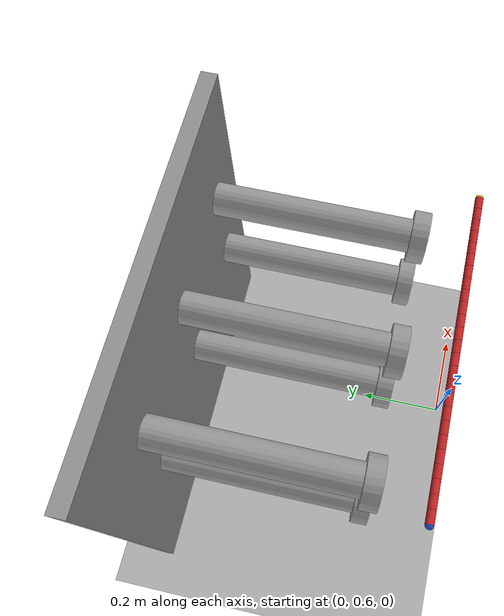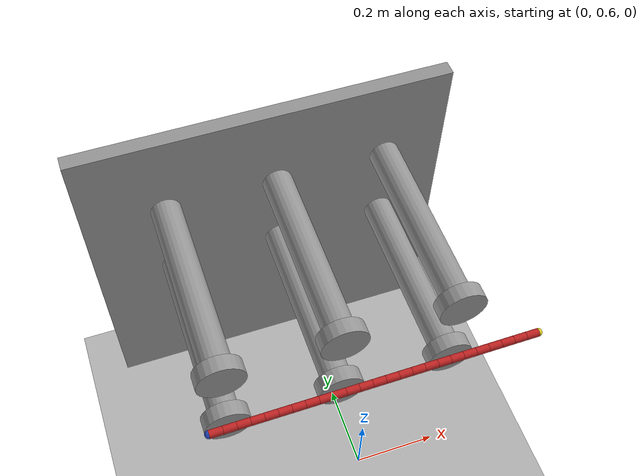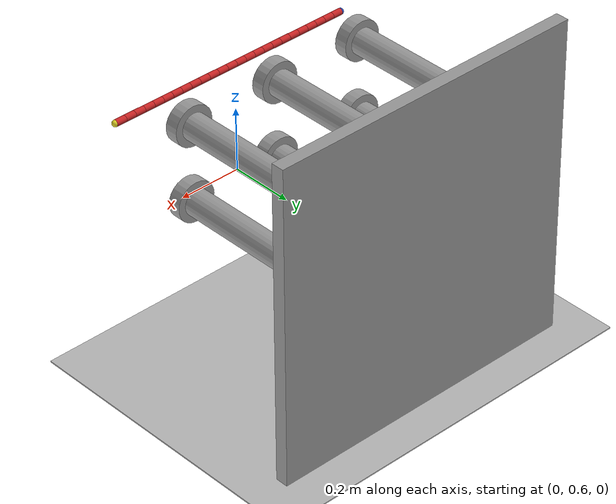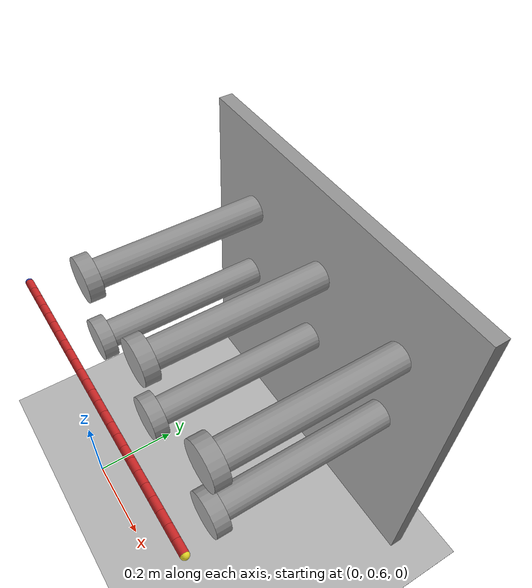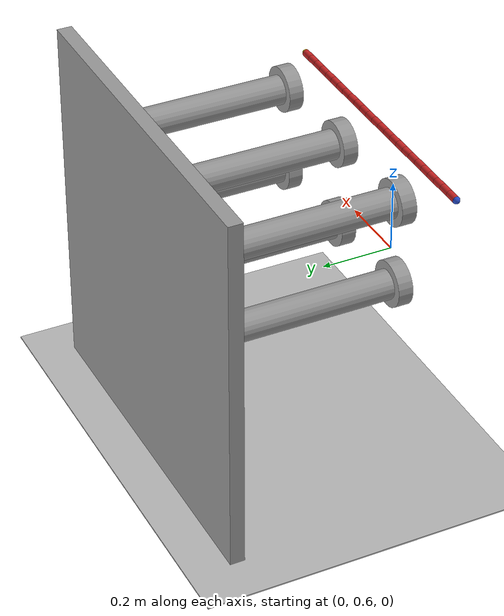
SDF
<sdf version="1.4">
 <world name="default">
  <scene>
   <grid>false</grid>
   <origin_visual>false</origin_visual>
   <sky><clouds><speed>12</speed></clouds></sky>
  </scene>
  <physics name="ode" type="ode">
   <max_step_size>0.01</max_step_size>
   <real_time_factor>1</real_time_factor>
   <real_time_update_rate>0</real_time_update_rate>
   <ode>
    <solver>
     <island_threads>2</island_threads>
     <type>quick</type>
     <iters>100</iters>
     <sor>1.0</sor>
     <use_dynamic_moi_rescaling>false</use_dynamic_moi_rescaling>
    </solver>
    <constraints><erp>0.2</erp></constraints>
   </ode>
  </physics>
  <plugin name="arm_gazebo_ros" filename="libarm_gazebo_ros_plugin.so"/>
  <plugin name="gazebo_ros_tf_plugin" filename="libgazebo_ros_tf_plugin.so"/>
  <plugin name="ros_link_attacher_plugin" filename="libgazebo_ros_link_attacher.so"/>
  <plugin name="position_3d_plugin" filename="libposition_3d_plugin.so"/>
  <plugin name="collision_map_plugin" filename="libcollision_map_plugin.so"/>
  <include><uri>model://my_ground_plane</uri><pose>0 0 -0.415 0 0 0</pose></include>
  <include><uri>model://sun</uri></include>
  <include><uri>model://hooks_rack</uri><pose>0.0 1.05 0.25 0 0 0</pose></include>
  <include><uri>model://rope_3d</uri><pose>-0.36 0.63 0.37 0 0 0</pose></include>
 </world>
</sdf>

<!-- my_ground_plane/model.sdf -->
<sdf version="1.5">
    <model name="my_ground_plane">
        <static>true</static>
            <allow_auto_disable>true</allow_auto_disable>
        <link name="link">
            <collision name="collision">
                <geometry>
                    <plane>
                        <normal>0 0 1</normal>
                        <size>4 4</size>
                    </plane>
                </geometry>
                <surface>
                    <friction>
                        <ode>
                            <mu>1000</mu>
                            <mu2>1000</mu2>
                        </ode>
                    </friction>
                    <contact>
                        <ode>
                            <kp>1e15</kp>
                            <kd>1e10</kd>
                        </ode>
                    </contact>
                </surface>
            </collision>
            <visual name="visual">
                <cast_shadows>false</cast_shadows>
                <geometry>
                    <plane>
                        <normal>0 0 1</normal>
                        <size>4 4</size>
                    </plane>
                </geometry>
                <material>
                    <script>
                        <uri>model://my_ground_plane/concrete.material</uri>
                        <name>ConcreteTexture</name>
                    </script>
                </material>
            </visual>
        </link>
    </model>
</sdf>

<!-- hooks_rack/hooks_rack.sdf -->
<sdf version='1.7'>
  <model name='hooks_rack'>
    <link name='wall'>
      <kinematic>1</kinematic>
      <inertial>
            <mass>0.0443983</mass>
            <inertia>
              <ixx>0.00370715</ixx>
              <ixy>0</ixy>
              <ixz>0</ixz>
              <iyy>0.00739972</iyy>
              <iyz>0</iyz>
              <izz>0.00370715</izz>
            </inertia>
            <pose>0 0 0 0 -0 0</pose>
            </inertial>
      <pose>-0.02 0.25 -0.16 0 -0 0</pose>
      <visual name='visual'>
        <pose>0 0 0 0 -0 0</pose>
        <geometry>
          <box>
            <size>1 0.04 1</size>
          </box>
        </geometry>
        <material>
          <script>
            <uri>file://media/materials/scripts/gazebo.material</uri>
            <name>Gazebo/Grey</name>
          </script>
        </material>
      </visual>
      <collision name='collision'>
        <max_contacts>10</max_contacts>
        <pose>0 0 0 0 -0 0</pose>
        <geometry>
          <box>
            <size>1 0.04 1</size>
          </box>
        </geometry>
      </collision>
    </link>
    <link name='hook1'>
      <kinematic>1</kinematic>
      <inertial>
            <mass>0.0443983</mass>
            <inertia>
              <ixx>0.00370715</ixx>
              <ixy>0</ixy>
              <ixz>0</ixz>
              <iyy>0.00739972</iyy>
              <iyz>0</iyz>
              <izz>0.00370715</izz>
            </inertia>
            <pose>0 0 0 0 -0 0</pose>
            </inertial>
      <pose>-0.3 -0.04 0.12 -1.5708 0 0</pose>
      <visual name='visual_pole'>
        <pose>0 0 0 0 -0 0</pose>
        <geometry>
          <cylinder>
            <radius>0.04</radius>
            <length>0.5</length>
          </cylinder>
        </geometry>
        <material>
          <script>
            <uri>file://media/materials/scripts/gazebo.material</uri>
            <name>Gazebo/Grey</name>
          </script>
        </material>
      </visual>
      <visual name='visual_cap'>
        <pose>0.0 0.0 -0.25 0 0 0</pose>
        <geometry>
          <cylinder>
            <radius>0.062000000000000006</radius>
            <length>0.04</length>
          </cylinder>
        </geometry>
        <material>
          <script>
            <uri>file://media/materials/scripts/gazebo.material</uri>
            <name>Gazebo/Grey</name>
          </script>
        </material>
      </visual>
      <collision name='collision_pole'>
        <max_contacts>10</max_contacts>
        <pose>0 0 0 0 -0 0</pose>
        <geometry>
          <cylinder>
            <radius>0.04</radius>
            <length>0.5</length>
          </cylinder>
        </geometry>
      </collision>
      <collision name='collision_cap'>
        <max_contacts>10</max_contacts>
        <pose>0.0 0.0 -0.25 0 0 0</pose>
        <geometry>
          <cylinder>
            <radius>0.062000000000000006</radius>
            <length>0.04</length>
          </cylinder>
        </geometry>
      </collision>
    </link>
    <link name='hook2'>
      <kinematic>1</kinematic>
      <inertial>
            <mass>0.0443983</mass>
            <inertia>
              <ixx>0.00370715</ixx>
              <ixy>0</ixy>
              <ixz>0</ixz>
              <iyy>0.00739972</iyy>
              <iyz>0</iyz>
              <izz>0.00370715</izz>
            </inertia>
            <pose>0 0 0 0 -0 0</pose>
            </inertial>
      <pose>0.0 -0.04 0.12 -1.5708 0 0</pose>
      <visual name='visual_pole'>
        <pose>0 0 0 0 -0 0</pose>
        <geometry>
          <cylinder>
            <radius>0.04</radius>
            <length>0.5</length>
          </cylinder>
        </geometry>
        <material>
          <script>
            <uri>file://media/materials/scripts/gazebo.material</uri>
            <name>Gazebo/Grey</name>
          </script>
        </material>
      </visual>
      <visual name='visual_cap'>
        <pose>0.0 0.0 -0.25 0 0 0</pose>
        <geometry>
          <cylinder>
            <radius>0.062000000000000006</radius>
            <length>0.04</length>
          </cylinder>
        </geometry>
        <material>
          <script>
            <uri>file://media/materials/scripts/gazebo.material</uri>
            <name>Gazebo/Grey</name>
          </script>
        </material>
      </visual>
      <collision name='collision_pole'>
        <max_contacts>10</max_contacts>
        <pose>0 0 0 0 -0 0</pose>
        <geometry>
          <cylinder>
            <radius>0.04</radius>
            <length>0.5</length>
          </cylinder>
        </geometry>
      </collision>
      <collision name='collision_cap'>
        <max_contacts>10</max_contacts>
        <pose>0.0 0.0 -0.25 0 0 0</pose>
        <geometry>
          <cylinder>
            <radius>0.062000000000000006</radius>
            <length>0.04</length>
          </cylinder>
        </geometry>
      </collision>
    </link>
    <link name='hook3'>
      <kinematic>1</kinematic>
      <inertial>
            <mass>0.0443983</mass>
            <inertia>
              <ixx>0.00370715</ixx>
              <ixy>0</ixy>
              <ixz>0</ixz>
              <iyy>0.00739972</iyy>
              <iyz>0</iyz>
              <izz>0.00370715</izz>
            </inertia>
            <pose>0 0 0 0 -0 0</pose>
            </inertial>
      <pose>0.3 -0.04 0.12 -1.5708 0 0</pose>
      <visual name='visual_pole'>
        <pose>0 0 0 0 -0 0</pose>
        <geometry>
          <cylinder>
            <radius>0.04</radius>
            <length>0.5</length>
          </cylinder>
        </geometry>
        <material>
          <script>
            <uri>file://media/materials/scripts/gazebo.material</uri>
            <name>Gazebo/Grey</name>
          </script>
        </material>
      </visual>
      <visual name='visual_cap'>
        <pose>0.0 0.0 -0.25 0 0 0</pose>
        <geometry>
          <cylinder>
            <radius>0.062000000000000006</radius>
            <length>0.04</length>
          </cylinder>
        </geometry>
        <material>
          <script>
            <uri>file://media/materials/scripts/gazebo.material</uri>
            <name>Gazebo/Grey</name>
          </script>
        </material>
      </visual>
      <collision name='collision_pole'>
        <max_contacts>10</max_contacts>
        <pose>0 0 0 0 -0 0</pose>
        <geometry>
          <cylinder>
            <radius>0.04</radius>
            <length>0.5</length>
          </cylinder>
        </geometry>
      </collision>
      <collision name='collision_cap'>
        <max_contacts>10</max_contacts>
        <pose>0.0 0.0 -0.25 0 0 0</pose>
        <geometry>
          <cylinder>
            <radius>0.062000000000000006</radius>
            <length>0.04</length>
          </cylinder>
        </geometry>
      </collision>
    </link>
    <link name='hook4'>
      <kinematic>1</kinematic>
      <inertial>
            <mass>0.0443983</mass>
            <inertia>
              <ixx>0.00370715</ixx>
              <ixy>0</ixy>
              <ixz>0</ixz>
              <iyy>0.00739972</iyy>
              <iyz>0</iyz>
              <izz>0.00370715</izz>
            </inertia>
            <pose>0 0 0 0 -0 0</pose>
            </inertial>
      <pose>-0.3 -0.04 -0.12 -1.5708 0 0</pose>
      <visual name='visual_pole'>
        <pose>0 0 0 0 -0 0</pose>
        <geometry>
          <cylinder>
            <radius>0.04</radius>
            <length>0.5</length>
          </cylinder>
        </geometry>
        <material>
          <script>
            <uri>file://media/materials/scripts/gazebo.material</uri>
            <name>Gazebo/Grey</name>
          </script>
        </material>
      </visual>
      <visual name='visual_cap'>
        <pose>0.0 0.0 -0.25 0 0 0</pose>
        <geometry>
          <cylinder>
            <radius>0.062000000000000006</radius>
            <length>0.04</length>
          </cylinder>
        </geometry>
        <material>
          <script>
            <uri>file://media/materials/scripts/gazebo.material</uri>
            <name>Gazebo/Grey</name>
          </script>
        </material>
      </visual>
      <collision name='collision_pole'>
        <max_contacts>10</max_contacts>
        <pose>0 0 0 0 -0 0</pose>
        <geometry>
          <cylinder>
            <radius>0.04</radius>
            <length>0.5</length>
          </cylinder>
        </geometry>
      </collision>
      <collision name='collision_cap'>
        <max_contacts>10</max_contacts>
        <pose>0.0 0.0 -0.25 0 0 0</pose>
        <geometry>
          <cylinder>
            <radius>0.062000000000000006</radius>
            <length>0.04</length>
          </cylinder>
        </geometry>
      </collision>
    </link>
    <link name='hook5'>
      <kinematic>1</kinematic>
      <inertial>
            <mass>0.0443983</mass>
            <inertia>
              <ixx>0.00370715</ixx>
              <ixy>0</ixy>
              <ixz>0</ixz>
              <iyy>0.00739972</iyy>
              <iyz>0</iyz>
              <izz>0.00370715</izz>
            </inertia>
            <pose>0 0 0 0 -0 0</pose>
            </inertial>
      <pose>0.0 -0.04 -0.12 -1.5708 0 0</pose>
      <visual name='visual_pole'>
        <pose>0 0 0 0 -0 0</pose>
        <geometry>
          <cylinder>
            <radius>0.04</radius>
            <length>0.5</length>
          </cylinder>
        </geometry>
        <material>
          <script>
            <uri>file://media/materials/scripts/gazebo.material</uri>
            <name>Gazebo/Grey</name>
          </script>
        </material>
      </visual>
      <visual name='visual_cap'>
        <pose>0.0 0.0 -0.25 0 0 0</pose>
        <geometry>
          <cylinder>
            <radius>0.062000000000000006</radius>
            <length>0.04</length>
          </cylinder>
        </geometry>
        <material>
          <script>
            <uri>file://media/materials/scripts/gazebo.material</uri>
            <name>Gazebo/Grey</name>
          </script>
        </material>
      </visual>
      <collision name='collision_pole'>
        <max_contacts>10</max_contacts>
        <pose>0 0 0 0 -0 0</pose>
        <geometry>
          <cylinder>
            <radius>0.04</radius>
            <length>0.5</length>
          </cylinder>
        </geometry>
      </collision>
      <collision name='collision_cap'>
        <max_contacts>10</max_contacts>
        <pose>0.0 0.0 -0.25 0 0 0</pose>
        <geometry>
          <cylinder>
            <radius>0.062000000000000006</radius>
            <length>0.04</length>
          </cylinder>
        </geometry>
      </collision>
    </link>
    <link name='hook6'>
      <kinematic>1</kinematic>
      <inertial>
            <mass>0.0443983</mass>
            <inertia>
              <ixx>0.00370715</ixx>
              <ixy>0</ixy>
              <ixz>0</ixz>
              <iyy>0.00739972</iyy>
              <iyz>0</iyz>
              <izz>0.00370715</izz>
            </inertia>
            <pose>0 0 0 0 -0 0</pose>
            </inertial>
      <pose>0.3 -0.04 -0.12 -1.5708 0 0</pose>
      <visual name='visual_pole'>
        <pose>0 0 0 0 -0 0</pose>
        <geometry>
          <cylinder>
            <radius>0.04</radius>
            <length>0.5</length>
          </cylinder>
        </geometry>
        <material>
          <script>
            <uri>file://media/materials/scripts/gazebo.material</uri>
            <name>Gazebo/Grey</name>
          </script>
        </material>
      </visual>
      <visual name='visual_cap'>
        <pose>0.0 0.0 -0.25 0 0 0</pose>
        <geometry>
          <cylinder>
            <radius>0.062000000000000006</radius>
            <length>0.04</length>
          </cylinder>
        </geometry>
        <material>
          <script>
            <uri>file://media/materials/scripts/gazebo.material</uri>
            <name>Gazebo/Grey</name>
          </script>
        </material>
      </visual>
      <collision name='collision_pole'>
        <max_contacts>10</max_contacts>
        <pose>0 0 0 0 -0 0</pose>
        <geometry>
          <cylinder>
            <radius>0.04</radius>
            <length>0.5</length>
          </cylinder>
        </geometry>
      </collision>
      <collision name='collision_cap'>
        <max_contacts>10</max_contacts>
        <pose>0.0 0.0 -0.25 0 0 0</pose>
        <geometry>
          <cylinder>
            <radius>0.062000000000000006</radius>
            <length>0.04</length>
          </cylinder>
        </geometry>
      </collision>
    </link>
    <allow_auto_disable>1</allow_auto_disable>
  </model>
</sdf>
